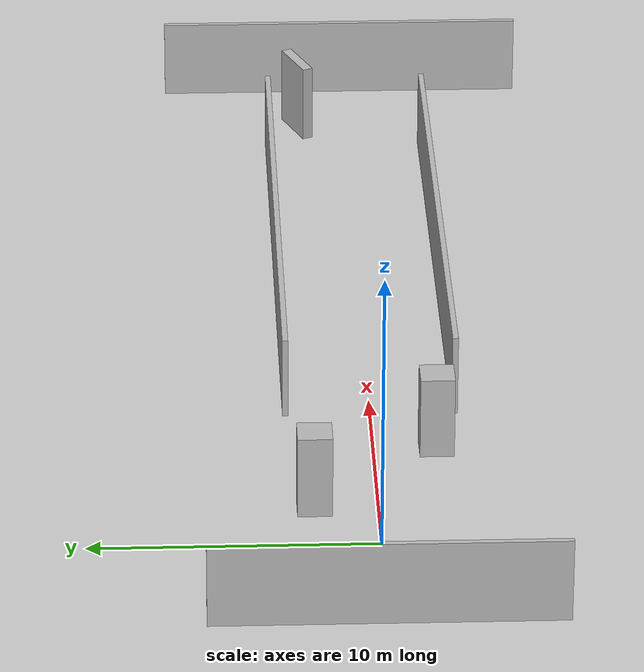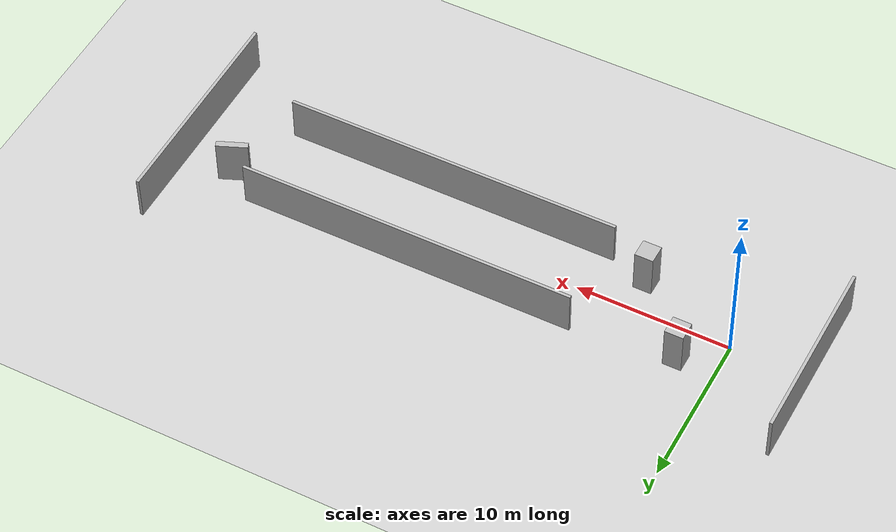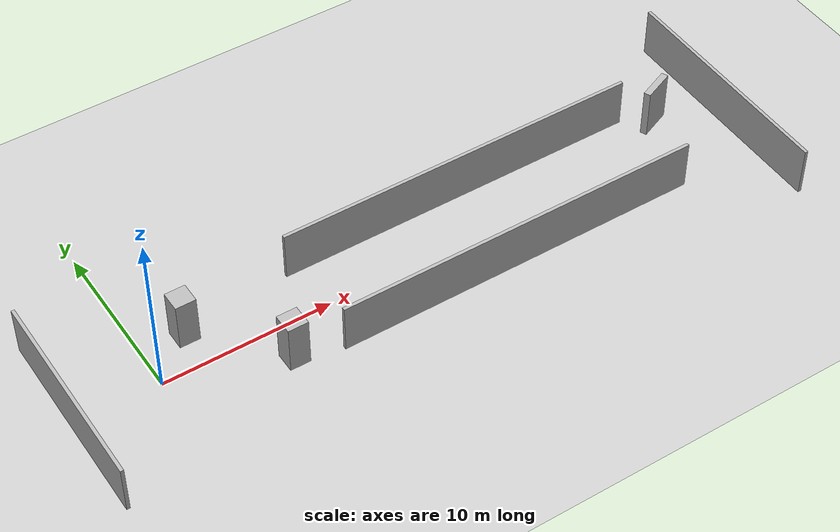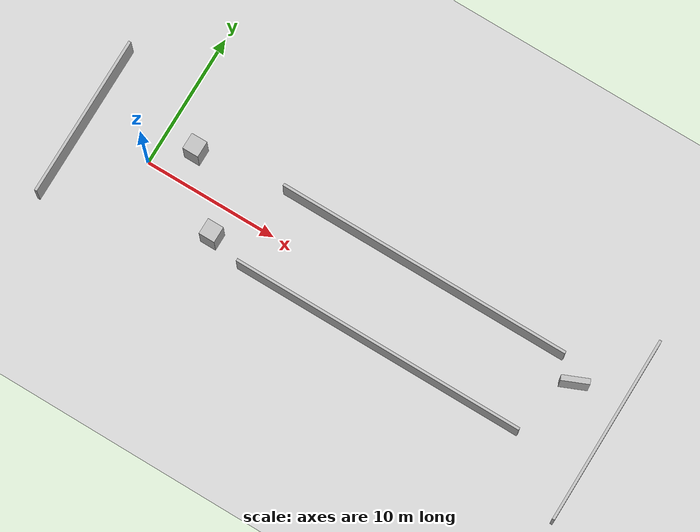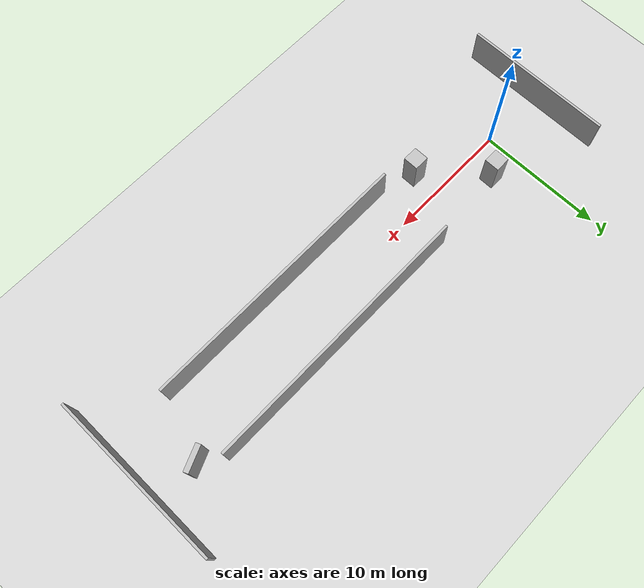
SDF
<?xml version="1.0" ?>
<sdf version="1.6">
  <world name="recovery_arena">
    <!-- 40m x 25m Figure-8 Multi-Zone SLAM Recovery Arena (Section 3.1 of REVIEW_AND_SIMULATION_PLAN.md) -->
    <physics type="ode">
      <max_step_size>0.001</max_step_size>
      <real_time_factor>1.0</real_time_factor>
      <real_time_update_rate>1000</real_time_update_rate>
    </physics>

    <include>
      <uri>model://sun</uri>
    </include>
    <include>
      <uri>model://ground_plane</uri>
    </include>

    <!-- Zone A: High-Information Orthogonal Anchor Zone (x in [-5, 10], y in [-6, 6], t in [0, 15]s) -->
    <model name="zone_a_west_wall">
      <static>true</static>
      <pose>-5.0 0.0 1.5 0 0 0</pose>
      <link name="link">
        <collision name="col"><geometry><box><size>0.2 12.0 3.0</size></box></geometry></collision>
        <visual name="vis"><geometry><box><size>0.2 12.0 3.0</size></box></geometry></visual>
      </link>
    </model>
    <model name="zone_a_pillar_1">
      <static>true</static>
      <pose>2.5 2.2 1.5 0 0 0</pose>
      <link name="link">
        <collision name="col"><geometry><box><size>1.2 1.2 3.0</size></box></geometry></collision>
        <visual name="vis"><geometry><box><size>1.2 1.2 3.0</size></box></geometry></visual>
      </link>
    </model>
    <model name="zone_a_pillar_2">
      <static>true</static>
      <pose>6.5 -2.2 1.5 0 0 0</pose>
      <link name="link">
        <collision name="col"><geometry><box><size>1.2 1.2 3.0</size></box></geometry></collision>
        <visual name="vis"><geometry><box><size>1.2 1.2 3.0</size></box></geometry></visual>
      </link>
    </model>

    <!-- Zone B: Parameterized Degenerate Corridor (x in [10, 30], y = +-3.0, t in [15, 35]s) -->
    <model name="zone_b_north_wall">
      <static>true</static>
      <pose>20.0 3.0 1.5 0 0 0</pose>
      <link name="link">
        <collision name="col"><geometry><box><size>22.0 0.2 3.0</size></box></geometry></collision>
        <visual name="vis"><geometry><box><size>22.0 0.2 3.0</size></box></geometry></visual>
      </link>
    </model>
    <model name="zone_b_south_wall">
      <static>true</static>
      <pose>20.0 -3.0 1.5 0 0 0</pose>
      <link name="link">
        <collision name="col"><geometry><box><size>22.0 0.2 3.0</size></box></geometry></collision>
        <visual name="vis"><geometry><box><size>22.0 0.2 3.0</size></box></geometry></visual>
      </link>
    </model>

    <!-- Zone C & D: Recovery Transition & Counterfactual Fork (x in [30, 40], t in [35, 70]s) -->
    <model name="zone_c_east_endwall">
      <static>true</static>
      <pose>36.0 0.0 1.5 0 0 0</pose>
      <link name="link">
        <collision name="col"><geometry><box><size>0.2 14.0 3.0</size></box></geometry></collision>
        <visual name="vis"><geometry><box><size>0.2 14.0 3.0</size></box></geometry></visual>
      </link>
    </model>
    <model name="zone_c_baffle">
      <static>true</static>
      <pose>32.5 1.8 1.5 0 0 0.4</pose>
      <link name="link">
        <collision name="col"><geometry><box><size>2.0 0.4 3.0</size></box></geometry></collision>
        <visual name="vis"><geometry><box><size>2.0 0.4 3.0</size></box></geometry></visual>
      </link>
    </model>
  </world>
</sdf>
